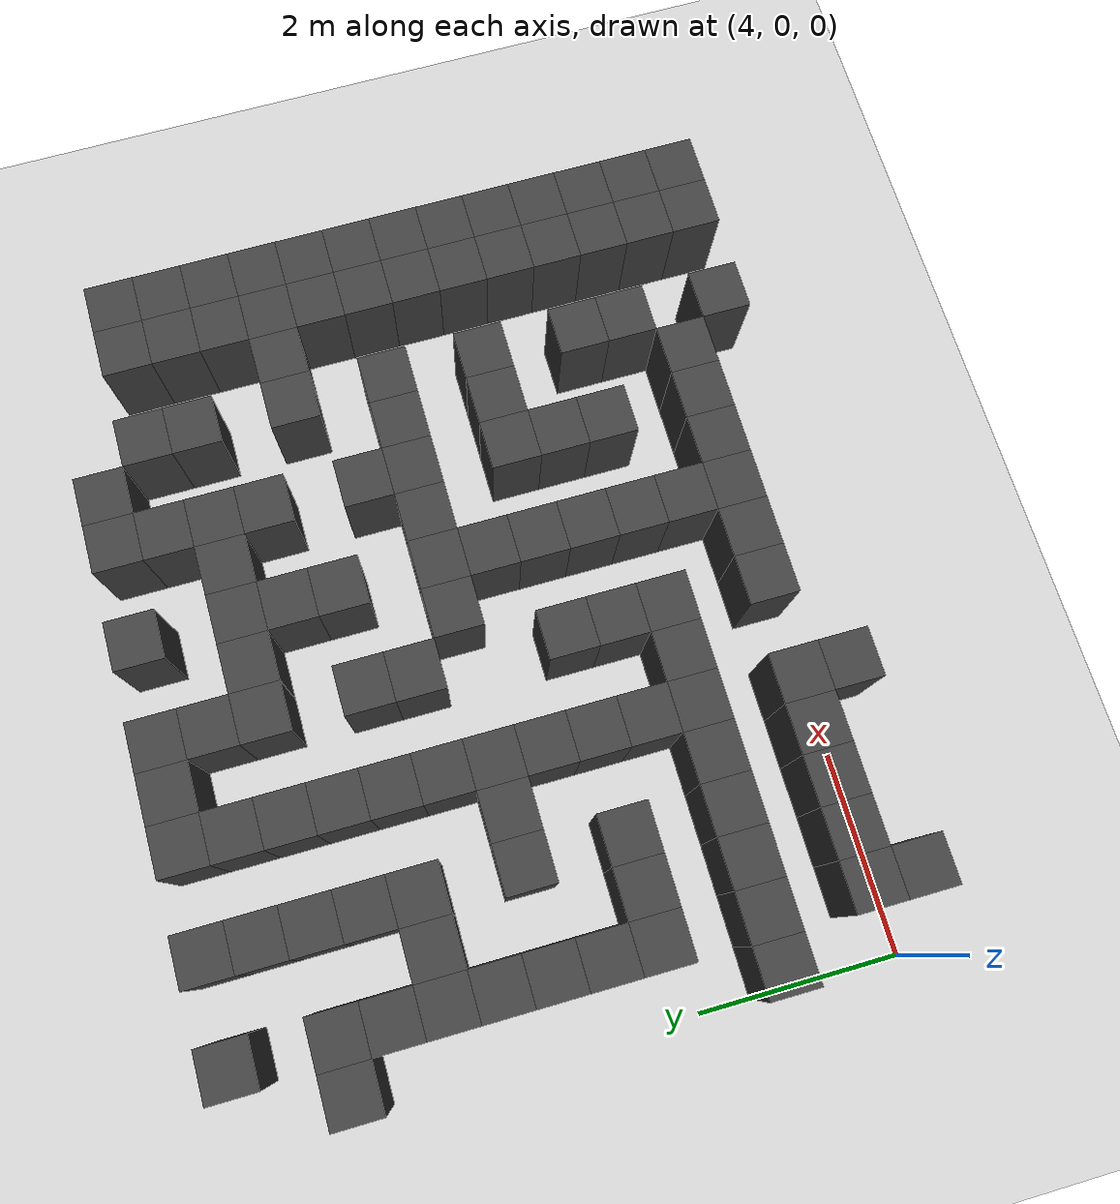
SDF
<sdf version="1.7">
 <world name="map_18596">
  <model name="ground_plane">
   <static>true</static>
   <link name="link">
    <collision name="collision">
     <geometry><plane><normal>0 0 1</normal><size>200 200</size></plane></geometry>
    </collision>
    <visual name="visual">
     <geometry><plane><normal>0 0 1</normal><size>200 200</size></plane></geometry>
     <material><ambient>0.8 0.8 0.8 1</ambient><diffuse>0.8 0.8 0.8 1</diffuse></material>
    </visual>
   </link>
  </model>
  <model name="maze_environment">
   <static>true</static>
   <link name="wall_334">
    <pose>4.750 6.250 0.500 0 0 0</pose>
    <collision name="col"><geometry><box><size>0.5 0.5 1.0</size></box></geometry></collision>
    <visual name="vis">
     <geometry><box><size>0.5 0.5 1.0</size></box></geometry>
     <material><ambient>0.15 0.15 0.15 1</ambient><diffuse>0.25 0.25 0.25 1</diffuse></material>
    </visual>
   </link>
   <link name="wall_335">
    <pose>5.750 6.250 0.500 0 0 0</pose>
    <collision name="col"><geometry><box><size>0.5 0.5 1.0</size></box></geometry></collision>
    <visual name="vis">
     <geometry><box><size>0.5 0.5 1.0</size></box></geometry>
     <material><ambient>0.15 0.15 0.15 1</ambient><diffuse>0.25 0.25 0.25 1</diffuse></material>
    </visual>
   </link>
   <link name="wall_336">
    <pose>6.750 6.250 0.500 0 0 0</pose>
    <collision name="col"><geometry><box><size>0.5 0.5 1.0</size></box></geometry></collision>
    <visual name="vis">
     <geometry><box><size>0.5 0.5 1.0</size></box></geometry>
     <material><ambient>0.15 0.15 0.15 1</ambient><diffuse>0.25 0.25 0.25 1</diffuse></material>
    </visual>
   </link>
   <link name="wall_337">
    <pose>7.250 6.250 0.500 0 0 0</pose>
    <collision name="col"><geometry><box><size>0.5 0.5 1.0</size></box></geometry></collision>
    <visual name="vis">
     <geometry><box><size>0.5 0.5 1.0</size></box></geometry>
     <material><ambient>0.15 0.15 0.15 1</ambient><diffuse>0.25 0.25 0.25 1</diffuse></material>
    </visual>
   </link>
   <link name="wall_338">
    <pose>7.750 6.250 0.500 0 0 0</pose>
    <collision name="col"><geometry><box><size>0.5 0.5 1.0</size></box></geometry></collision>
    <visual name="vis">
     <geometry><box><size>0.5 0.5 1.0</size></box></geometry>
     <material><ambient>0.15 0.15 0.15 1</ambient><diffuse>0.25 0.25 0.25 1</diffuse></material>
    </visual>
   </link>
   <link name="wall_339">
    <pose>8.750 6.250 0.500 0 0 0</pose>
    <collision name="col"><geometry><box><size>0.5 0.5 1.0</size></box></geometry></collision>
    <visual name="vis">
     <geometry><box><size>0.5 0.5 1.0</size></box></geometry>
     <material><ambient>0.15 0.15 0.15 1</ambient><diffuse>0.25 0.25 0.25 1</diffuse></material>
    </visual>
   </link>
   <link name="wall_340">
    <pose>9.750 6.250 0.500 0 0 0</pose>
    <collision name="col"><geometry><box><size>0.5 0.5 1.0</size></box></geometry></collision>
    <visual name="vis">
     <geometry><box><size>0.5 0.5 1.0</size></box></geometry>
     <material><ambient>0.15 0.15 0.15 1</ambient><diffuse>0.25 0.25 0.25 1</diffuse></material>
    </visual>
   </link>
   <link name="wall_341">
    <pose>10.250 6.250 0.500 0 0 0</pose>
    <collision name="col"><geometry><box><size>0.5 0.5 1.0</size></box></geometry></collision>
    <visual name="vis">
     <geometry><box><size>0.5 0.5 1.0</size></box></geometry>
     <material><ambient>0.15 0.15 0.15 1</ambient><diffuse>0.25 0.25 0.25 1</diffuse></material>
    </visual>
   </link>
   <link name="wall_348">
    <pose>5.750 5.750 0.500 0 0 0</pose>
    <collision name="col"><geometry><box><size>0.5 0.5 1.0</size></box></geometry></collision>
    <visual name="vis">
     <geometry><box><size>0.5 0.5 1.0</size></box></geometry>
     <material><ambient>0.15 0.15 0.15 1</ambient><diffuse>0.25 0.25 0.25 1</diffuse></material>
    </visual>
   </link>
   <link name="wall_349">
    <pose>6.750 5.750 0.500 0 0 0</pose>
    <collision name="col"><geometry><box><size>0.5 0.5 1.0</size></box></geometry></collision>
    <visual name="vis">
     <geometry><box><size>0.5 0.5 1.0</size></box></geometry>
     <material><ambient>0.15 0.15 0.15 1</ambient><diffuse>0.25 0.25 0.25 1</diffuse></material>
    </visual>
   </link>
   <link name="wall_350">
    <pose>7.750 5.750 0.500 0 0 0</pose>
    <collision name="col"><geometry><box><size>0.5 0.5 1.0</size></box></geometry></collision>
    <visual name="vis">
     <geometry><box><size>0.5 0.5 1.0</size></box></geometry>
     <material><ambient>0.15 0.15 0.15 1</ambient><diffuse>0.25 0.25 0.25 1</diffuse></material>
    </visual>
   </link>
   <link name="wall_351">
    <pose>9.750 5.750 0.500 0 0 0</pose>
    <collision name="col"><geometry><box><size>0.5 0.5 1.0</size></box></geometry></collision>
    <visual name="vis">
     <geometry><box><size>0.5 0.5 1.0</size></box></geometry>
     <material><ambient>0.15 0.15 0.15 1</ambient><diffuse>0.25 0.25 0.25 1</diffuse></material>
    </visual>
   </link>
   <link name="wall_352">
    <pose>10.750 5.750 0.500 0 0 0</pose>
    <collision name="col"><geometry><box><size>0.5 0.5 1.0</size></box></geometry></collision>
    <visual name="vis">
     <geometry><box><size>0.5 0.5 1.0</size></box></geometry>
     <material><ambient>0.15 0.15 0.15 1</ambient><diffuse>0.25 0.25 0.25 1</diffuse></material>
    </visual>
   </link>
   <link name="wall_353">
    <pose>11.750 5.750 0.500 0 0 0</pose>
    <collision name="col"><geometry><box><size>0.5 0.5 1.0</size></box></geometry></collision>
    <visual name="vis">
     <geometry><box><size>0.5 0.5 1.0</size></box></geometry>
     <material><ambient>0.15 0.15 0.15 1</ambient><diffuse>0.25 0.25 0.25 1</diffuse></material>
    </visual>
   </link>
   <link name="wall_354">
    <pose>12.250 5.750 0.500 0 0 0</pose>
    <collision name="col"><geometry><box><size>0.5 0.5 1.0</size></box></geometry></collision>
    <visual name="vis">
     <geometry><box><size>0.5 0.5 1.0</size></box></geometry>
     <material><ambient>0.15 0.15 0.15 1</ambient><diffuse>0.25 0.25 0.25 1</diffuse></material>
    </visual>
   </link>
   <link name="wall_383">
    <pose>4.250 5.250 0.500 0 0 0</pose>
    <collision name="col"><geometry><box><size>0.5 0.5 1.0</size></box></geometry></collision>
    <visual name="vis">
     <geometry><box><size>0.5 0.5 1.0</size></box></geometry>
     <material><ambient>0.15 0.15 0.15 1</ambient><diffuse>0.25 0.25 0.25 1</diffuse></material>
    </visual>
   </link>
   <link name="wall_384">
    <pose>4.750 5.250 0.500 0 0 0</pose>
    <collision name="col"><geometry><box><size>0.5 0.5 1.0</size></box></geometry></collision>
    <visual name="vis">
     <geometry><box><size>0.5 0.5 1.0</size></box></geometry>
     <material><ambient>0.15 0.15 0.15 1</ambient><diffuse>0.25 0.25 0.25 1</diffuse></material>
    </visual>
   </link>
   <link name="wall_385">
    <pose>5.750 5.250 0.500 0 0 0</pose>
    <collision name="col"><geometry><box><size>0.5 0.5 1.0</size></box></geometry></collision>
    <visual name="vis">
     <geometry><box><size>0.5 0.5 1.0</size></box></geometry>
     <material><ambient>0.15 0.15 0.15 1</ambient><diffuse>0.25 0.25 0.25 1</diffuse></material>
    </visual>
   </link>
   <link name="wall_386">
    <pose>6.750 5.250 0.500 0 0 0</pose>
    <collision name="col"><geometry><box><size>0.5 0.5 1.0</size></box></geometry></collision>
    <visual name="vis">
     <geometry><box><size>0.5 0.5 1.0</size></box></geometry>
     <material><ambient>0.15 0.15 0.15 1</ambient><diffuse>0.25 0.25 0.25 1</diffuse></material>
    </visual>
   </link>
   <link name="wall_387">
    <pose>7.750 5.250 0.500 0 0 0</pose>
    <collision name="col"><geometry><box><size>0.5 0.5 1.0</size></box></geometry></collision>
    <visual name="vis">
     <geometry><box><size>0.5 0.5 1.0</size></box></geometry>
     <material><ambient>0.15 0.15 0.15 1</ambient><diffuse>0.25 0.25 0.25 1</diffuse></material>
    </visual>
   </link>
   <link name="wall_388">
    <pose>8.250 5.250 0.500 0 0 0</pose>
    <collision name="col"><geometry><box><size>0.5 0.5 1.0</size></box></geometry></collision>
    <visual name="vis">
     <geometry><box><size>0.5 0.5 1.0</size></box></geometry>
     <material><ambient>0.15 0.15 0.15 1</ambient><diffuse>0.25 0.25 0.25 1</diffuse></material>
    </visual>
   </link>
   <link name="wall_389">
    <pose>8.750 5.250 0.500 0 0 0</pose>
    <collision name="col"><geometry><box><size>0.5 0.5 1.0</size></box></geometry></collision>
    <visual name="vis">
     <geometry><box><size>0.5 0.5 1.0</size></box></geometry>
     <material><ambient>0.15 0.15 0.15 1</ambient><diffuse>0.25 0.25 0.25 1</diffuse></material>
    </visual>
   </link>
   <link name="wall_390">
    <pose>9.250 5.250 0.500 0 0 0</pose>
    <collision name="col"><geometry><box><size>0.5 0.5 1.0</size></box></geometry></collision>
    <visual name="vis">
     <geometry><box><size>0.5 0.5 1.0</size></box></geometry>
     <material><ambient>0.15 0.15 0.15 1</ambient><diffuse>0.25 0.25 0.25 1</diffuse></material>
    </visual>
   </link>
   <link name="wall_391">
    <pose>9.750 5.250 0.500 0 0 0</pose>
    <collision name="col"><geometry><box><size>0.5 0.5 1.0</size></box></geometry></collision>
    <visual name="vis">
     <geometry><box><size>0.5 0.5 1.0</size></box></geometry>
     <material><ambient>0.15 0.15 0.15 1</ambient><diffuse>0.25 0.25 0.25 1</diffuse></material>
    </visual>
   </link>
   <link name="wall_392">
    <pose>10.750 5.250 0.500 0 0 0</pose>
    <collision name="col"><geometry><box><size>0.5 0.5 1.0</size></box></geometry></collision>
    <visual name="vis">
     <geometry><box><size>0.5 0.5 1.0</size></box></geometry>
     <material><ambient>0.15 0.15 0.15 1</ambient><diffuse>0.25 0.25 0.25 1</diffuse></material>
    </visual>
   </link>
   <link name="wall_393">
    <pose>11.750 5.250 0.500 0 0 0</pose>
    <collision name="col"><geometry><box><size>0.5 0.5 1.0</size></box></geometry></collision>
    <visual name="vis">
     <geometry><box><size>0.5 0.5 1.0</size></box></geometry>
     <material><ambient>0.15 0.15 0.15 1</ambient><diffuse>0.25 0.25 0.25 1</diffuse></material>
    </visual>
   </link>
   <link name="wall_394">
    <pose>12.250 5.250 0.500 0 0 0</pose>
    <collision name="col"><geometry><box><size>0.5 0.5 1.0</size></box></geometry></collision>
    <visual name="vis">
     <geometry><box><size>0.5 0.5 1.0</size></box></geometry>
     <material><ambient>0.15 0.15 0.15 1</ambient><diffuse>0.25 0.25 0.25 1</diffuse></material>
    </visual>
   </link>
   <link name="wall_402">
    <pose>4.750 4.750 0.500 0 0 0</pose>
    <collision name="col"><geometry><box><size>0.5 0.5 1.0</size></box></geometry></collision>
    <visual name="vis">
     <geometry><box><size>0.5 0.5 1.0</size></box></geometry>
     <material><ambient>0.15 0.15 0.15 1</ambient><diffuse>0.25 0.25 0.25 1</diffuse></material>
    </visual>
   </link>
   <link name="wall_403">
    <pose>5.750 4.750 0.500 0 0 0</pose>
    <collision name="col"><geometry><box><size>0.5 0.5 1.0</size></box></geometry></collision>
    <visual name="vis">
     <geometry><box><size>0.5 0.5 1.0</size></box></geometry>
     <material><ambient>0.15 0.15 0.15 1</ambient><diffuse>0.25 0.25 0.25 1</diffuse></material>
    </visual>
   </link>
   <link name="wall_404">
    <pose>6.750 4.750 0.500 0 0 0</pose>
    <collision name="col"><geometry><box><size>0.5 0.5 1.0</size></box></geometry></collision>
    <visual name="vis">
     <geometry><box><size>0.5 0.5 1.0</size></box></geometry>
     <material><ambient>0.15 0.15 0.15 1</ambient><diffuse>0.25 0.25 0.25 1</diffuse></material>
    </visual>
   </link>
   <link name="wall_405">
    <pose>8.750 4.750 0.500 0 0 0</pose>
    <collision name="col"><geometry><box><size>0.5 0.5 1.0</size></box></geometry></collision>
    <visual name="vis">
     <geometry><box><size>0.5 0.5 1.0</size></box></geometry>
     <material><ambient>0.15 0.15 0.15 1</ambient><diffuse>0.25 0.25 0.25 1</diffuse></material>
    </visual>
   </link>
   <link name="wall_406">
    <pose>9.750 4.750 0.500 0 0 0</pose>
    <collision name="col"><geometry><box><size>0.5 0.5 1.0</size></box></geometry></collision>
    <visual name="vis">
     <geometry><box><size>0.5 0.5 1.0</size></box></geometry>
     <material><ambient>0.15 0.15 0.15 1</ambient><diffuse>0.25 0.25 0.25 1</diffuse></material>
    </visual>
   </link>
   <link name="wall_407">
    <pose>11.750 4.750 0.500 0 0 0</pose>
    <collision name="col"><geometry><box><size>0.5 0.5 1.0</size></box></geometry></collision>
    <visual name="vis">
     <geometry><box><size>0.5 0.5 1.0</size></box></geometry>
     <material><ambient>0.15 0.15 0.15 1</ambient><diffuse>0.25 0.25 0.25 1</diffuse></material>
    </visual>
   </link>
   <link name="wall_408">
    <pose>12.250 4.750 0.500 0 0 0</pose>
    <collision name="col"><geometry><box><size>0.5 0.5 1.0</size></box></geometry></collision>
    <visual name="vis">
     <geometry><box><size>0.5 0.5 1.0</size></box></geometry>
     <material><ambient>0.15 0.15 0.15 1</ambient><diffuse>0.25 0.25 0.25 1</diffuse></material>
    </visual>
   </link>
   <link name="wall_434">
    <pose>4.750 4.250 0.500 0 0 0</pose>
    <collision name="col"><geometry><box><size>0.5 0.5 1.0</size></box></geometry></collision>
    <visual name="vis">
     <geometry><box><size>0.5 0.5 1.0</size></box></geometry>
     <material><ambient>0.15 0.15 0.15 1</ambient><diffuse>0.25 0.25 0.25 1</diffuse></material>
    </visual>
   </link>
   <link name="wall_435">
    <pose>5.250 4.250 0.500 0 0 0</pose>
    <collision name="col"><geometry><box><size>0.5 0.5 1.0</size></box></geometry></collision>
    <visual name="vis">
     <geometry><box><size>0.5 0.5 1.0</size></box></geometry>
     <material><ambient>0.15 0.15 0.15 1</ambient><diffuse>0.25 0.25 0.25 1</diffuse></material>
    </visual>
   </link>
   <link name="wall_436">
    <pose>5.750 4.250 0.500 0 0 0</pose>
    <collision name="col"><geometry><box><size>0.5 0.5 1.0</size></box></geometry></collision>
    <visual name="vis">
     <geometry><box><size>0.5 0.5 1.0</size></box></geometry>
     <material><ambient>0.15 0.15 0.15 1</ambient><diffuse>0.25 0.25 0.25 1</diffuse></material>
    </visual>
   </link>
   <link name="wall_437">
    <pose>6.750 4.250 0.500 0 0 0</pose>
    <collision name="col"><geometry><box><size>0.5 0.5 1.0</size></box></geometry></collision>
    <visual name="vis">
     <geometry><box><size>0.5 0.5 1.0</size></box></geometry>
     <material><ambient>0.15 0.15 0.15 1</ambient><diffuse>0.25 0.25 0.25 1</diffuse></material>
    </visual>
   </link>
   <link name="wall_438">
    <pose>7.750 4.250 0.500 0 0 0</pose>
    <collision name="col"><geometry><box><size>0.5 0.5 1.0</size></box></geometry></collision>
    <visual name="vis">
     <geometry><box><size>0.5 0.5 1.0</size></box></geometry>
     <material><ambient>0.15 0.15 0.15 1</ambient><diffuse>0.25 0.25 0.25 1</diffuse></material>
    </visual>
   </link>
   <link name="wall_439">
    <pose>8.750 4.250 0.500 0 0 0</pose>
    <collision name="col"><geometry><box><size>0.5 0.5 1.0</size></box></geometry></collision>
    <visual name="vis">
     <geometry><box><size>0.5 0.5 1.0</size></box></geometry>
     <material><ambient>0.15 0.15 0.15 1</ambient><diffuse>0.25 0.25 0.25 1</diffuse></material>
    </visual>
   </link>
   <link name="wall_440">
    <pose>10.750 4.250 0.500 0 0 0</pose>
    <collision name="col"><geometry><box><size>0.5 0.5 1.0</size></box></geometry></collision>
    <visual name="vis">
     <geometry><box><size>0.5 0.5 1.0</size></box></geometry>
     <material><ambient>0.15 0.15 0.15 1</ambient><diffuse>0.25 0.25 0.25 1</diffuse></material>
    </visual>
   </link>
   <link name="wall_441">
    <pose>11.250 4.250 0.500 0 0 0</pose>
    <collision name="col"><geometry><box><size>0.5 0.5 1.0</size></box></geometry></collision>
    <visual name="vis">
     <geometry><box><size>0.5 0.5 1.0</size></box></geometry>
     <material><ambient>0.15 0.15 0.15 1</ambient><diffuse>0.25 0.25 0.25 1</diffuse></material>
    </visual>
   </link>
   <link name="wall_442">
    <pose>11.750 4.250 0.500 0 0 0</pose>
    <collision name="col"><geometry><box><size>0.5 0.5 1.0</size></box></geometry></collision>
    <visual name="vis">
     <geometry><box><size>0.5 0.5 1.0</size></box></geometry>
     <material><ambient>0.15 0.15 0.15 1</ambient><diffuse>0.25 0.25 0.25 1</diffuse></material>
    </visual>
   </link>
   <link name="wall_443">
    <pose>12.250 4.250 0.500 0 0 0</pose>
    <collision name="col"><geometry><box><size>0.5 0.5 1.0</size></box></geometry></collision>
    <visual name="vis">
     <geometry><box><size>0.5 0.5 1.0</size></box></geometry>
     <material><ambient>0.15 0.15 0.15 1</ambient><diffuse>0.25 0.25 0.25 1</diffuse></material>
    </visual>
   </link>
   <link name="wall_452">
    <pose>4.750 3.750 0.500 0 0 0</pose>
    <collision name="col"><geometry><box><size>0.5 0.5 1.0</size></box></geometry></collision>
    <visual name="vis">
     <geometry><box><size>0.5 0.5 1.0</size></box></geometry>
     <material><ambient>0.15 0.15 0.15 1</ambient><diffuse>0.25 0.25 0.25 1</diffuse></material>
    </visual>
   </link>
   <link name="wall_453">
    <pose>6.750 3.750 0.500 0 0 0</pose>
    <collision name="col"><geometry><box><size>0.5 0.5 1.0</size></box></geometry></collision>
    <visual name="vis">
     <geometry><box><size>0.5 0.5 1.0</size></box></geometry>
     <material><ambient>0.15 0.15 0.15 1</ambient><diffuse>0.25 0.25 0.25 1</diffuse></material>
    </visual>
   </link>
   <link name="wall_454">
    <pose>7.750 3.750 0.500 0 0 0</pose>
    <collision name="col"><geometry><box><size>0.5 0.5 1.0</size></box></geometry></collision>
    <visual name="vis">
     <geometry><box><size>0.5 0.5 1.0</size></box></geometry>
     <material><ambient>0.15 0.15 0.15 1</ambient><diffuse>0.25 0.25 0.25 1</diffuse></material>
    </visual>
   </link>
   <link name="wall_455">
    <pose>9.750 3.750 0.500 0 0 0</pose>
    <collision name="col"><geometry><box><size>0.5 0.5 1.0</size></box></geometry></collision>
    <visual name="vis">
     <geometry><box><size>0.5 0.5 1.0</size></box></geometry>
     <material><ambient>0.15 0.15 0.15 1</ambient><diffuse>0.25 0.25 0.25 1</diffuse></material>
    </visual>
   </link>
   <link name="wall_456">
    <pose>11.750 3.750 0.500 0 0 0</pose>
    <collision name="col"><geometry><box><size>0.5 0.5 1.0</size></box></geometry></collision>
    <visual name="vis">
     <geometry><box><size>0.5 0.5 1.0</size></box></geometry>
     <material><ambient>0.15 0.15 0.15 1</ambient><diffuse>0.25 0.25 0.25 1</diffuse></material>
    </visual>
   </link>
   <link name="wall_457">
    <pose>12.250 3.750 0.500 0 0 0</pose>
    <collision name="col"><geometry><box><size>0.5 0.5 1.0</size></box></geometry></collision>
    <visual name="vis">
     <geometry><box><size>0.5 0.5 1.0</size></box></geometry>
     <material><ambient>0.15 0.15 0.15 1</ambient><diffuse>0.25 0.25 0.25 1</diffuse></material>
    </visual>
   </link>
   <link name="wall_483">
    <pose>4.750 3.250 0.500 0 0 0</pose>
    <collision name="col"><geometry><box><size>0.5 0.5 1.0</size></box></geometry></collision>
    <visual name="vis">
     <geometry><box><size>0.5 0.5 1.0</size></box></geometry>
     <material><ambient>0.15 0.15 0.15 1</ambient><diffuse>0.25 0.25 0.25 1</diffuse></material>
    </visual>
   </link>
   <link name="wall_484">
    <pose>5.750 3.250 0.500 0 0 0</pose>
    <collision name="col"><geometry><box><size>0.5 0.5 1.0</size></box></geometry></collision>
    <visual name="vis">
     <geometry><box><size>0.5 0.5 1.0</size></box></geometry>
     <material><ambient>0.15 0.15 0.15 1</ambient><diffuse>0.25 0.25 0.25 1</diffuse></material>
    </visual>
   </link>
   <link name="wall_485">
    <pose>6.250 3.250 0.500 0 0 0</pose>
    <collision name="col"><geometry><box><size>0.5 0.5 1.0</size></box></geometry></collision>
    <visual name="vis">
     <geometry><box><size>0.5 0.5 1.0</size></box></geometry>
     <material><ambient>0.15 0.15 0.15 1</ambient><diffuse>0.25 0.25 0.25 1</diffuse></material>
    </visual>
   </link>
   <link name="wall_486">
    <pose>6.750 3.250 0.500 0 0 0</pose>
    <collision name="col"><geometry><box><size>0.5 0.5 1.0</size></box></geometry></collision>
    <visual name="vis">
     <geometry><box><size>0.5 0.5 1.0</size></box></geometry>
     <material><ambient>0.15 0.15 0.15 1</ambient><diffuse>0.25 0.25 0.25 1</diffuse></material>
    </visual>
   </link>
   <link name="wall_487">
    <pose>8.250 3.250 0.500 0 0 0</pose>
    <collision name="col"><geometry><box><size>0.5 0.5 1.0</size></box></geometry></collision>
    <visual name="vis">
     <geometry><box><size>0.5 0.5 1.0</size></box></geometry>
     <material><ambient>0.15 0.15 0.15 1</ambient><diffuse>0.25 0.25 0.25 1</diffuse></material>
    </visual>
   </link>
   <link name="wall_488">
    <pose>8.750 3.250 0.500 0 0 0</pose>
    <collision name="col"><geometry><box><size>0.5 0.5 1.0</size></box></geometry></collision>
    <visual name="vis">
     <geometry><box><size>0.5 0.5 1.0</size></box></geometry>
     <material><ambient>0.15 0.15 0.15 1</ambient><diffuse>0.25 0.25 0.25 1</diffuse></material>
    </visual>
   </link>
   <link name="wall_489">
    <pose>9.250 3.250 0.500 0 0 0</pose>
    <collision name="col"><geometry><box><size>0.5 0.5 1.0</size></box></geometry></collision>
    <visual name="vis">
     <geometry><box><size>0.5 0.5 1.0</size></box></geometry>
     <material><ambient>0.15 0.15 0.15 1</ambient><diffuse>0.25 0.25 0.25 1</diffuse></material>
    </visual>
   </link>
   <link name="wall_490">
    <pose>9.750 3.250 0.500 0 0 0</pose>
    <collision name="col"><geometry><box><size>0.5 0.5 1.0</size></box></geometry></collision>
    <visual name="vis">
     <geometry><box><size>0.5 0.5 1.0</size></box></geometry>
     <material><ambient>0.15 0.15 0.15 1</ambient><diffuse>0.25 0.25 0.25 1</diffuse></material>
    </visual>
   </link>
   <link name="wall_491">
    <pose>10.250 3.250 0.500 0 0 0</pose>
    <collision name="col"><geometry><box><size>0.5 0.5 1.0</size></box></geometry></collision>
    <visual name="vis">
     <geometry><box><size>0.5 0.5 1.0</size></box></geometry>
     <material><ambient>0.15 0.15 0.15 1</ambient><diffuse>0.25 0.25 0.25 1</diffuse></material>
    </visual>
   </link>
   <link name="wall_492">
    <pose>10.750 3.250 0.500 0 0 0</pose>
    <collision name="col"><geometry><box><size>0.5 0.5 1.0</size></box></geometry></collision>
    <visual name="vis">
     <geometry><box><size>0.5 0.5 1.0</size></box></geometry>
     <material><ambient>0.15 0.15 0.15 1</ambient><diffuse>0.25 0.25 0.25 1</diffuse></material>
    </visual>
   </link>
   <link name="wall_493">
    <pose>11.750 3.250 0.500 0 0 0</pose>
    <collision name="col"><geometry><box><size>0.5 0.5 1.0</size></box></geometry></collision>
    <visual name="vis">
     <geometry><box><size>0.5 0.5 1.0</size></box></geometry>
     <material><ambient>0.15 0.15 0.15 1</ambient><diffuse>0.25 0.25 0.25 1</diffuse></material>
    </visual>
   </link>
   <link name="wall_494">
    <pose>12.250 3.250 0.500 0 0 0</pose>
    <collision name="col"><geometry><box><size>0.5 0.5 1.0</size></box></geometry></collision>
    <visual name="vis">
     <geometry><box><size>0.5 0.5 1.0</size></box></geometry>
     <material><ambient>0.15 0.15 0.15 1</ambient><diffuse>0.25 0.25 0.25 1</diffuse></material>
    </visual>
   </link>
   <link name="wall_502">
    <pose>4.750 2.750 0.500 0 0 0</pose>
    <collision name="col"><geometry><box><size>0.5 0.5 1.0</size></box></geometry></collision>
    <visual name="vis">
     <geometry><box><size>0.5 0.5 1.0</size></box></geometry>
     <material><ambient>0.15 0.15 0.15 1</ambient><diffuse>0.25 0.25 0.25 1</diffuse></material>
    </visual>
   </link>
   <link name="wall_503">
    <pose>6.750 2.750 0.500 0 0 0</pose>
    <collision name="col"><geometry><box><size>0.5 0.5 1.0</size></box></geometry></collision>
    <visual name="vis">
     <geometry><box><size>0.5 0.5 1.0</size></box></geometry>
     <material><ambient>0.15 0.15 0.15 1</ambient><diffuse>0.25 0.25 0.25 1</diffuse></material>
    </visual>
   </link>
   <link name="wall_504">
    <pose>8.750 2.750 0.500 0 0 0</pose>
    <collision name="col"><geometry><box><size>0.5 0.5 1.0</size></box></geometry></collision>
    <visual name="vis">
     <geometry><box><size>0.5 0.5 1.0</size></box></geometry>
     <material><ambient>0.15 0.15 0.15 1</ambient><diffuse>0.25 0.25 0.25 1</diffuse></material>
    </visual>
   </link>
   <link name="wall_505">
    <pose>11.750 2.750 0.500 0 0 0</pose>
    <collision name="col"><geometry><box><size>0.5 0.5 1.0</size></box></geometry></collision>
    <visual name="vis">
     <geometry><box><size>0.5 0.5 1.0</size></box></geometry>
     <material><ambient>0.15 0.15 0.15 1</ambient><diffuse>0.25 0.25 0.25 1</diffuse></material>
    </visual>
   </link>
   <link name="wall_506">
    <pose>12.250 2.750 0.500 0 0 0</pose>
    <collision name="col"><geometry><box><size>0.5 0.5 1.0</size></box></geometry></collision>
    <visual name="vis">
     <geometry><box><size>0.5 0.5 1.0</size></box></geometry>
     <material><ambient>0.15 0.15 0.15 1</ambient><diffuse>0.25 0.25 0.25 1</diffuse></material>
    </visual>
   </link>
   <link name="wall_534">
    <pose>4.750 2.250 0.500 0 0 0</pose>
    <collision name="col"><geometry><box><size>0.5 0.5 1.0</size></box></geometry></collision>
    <visual name="vis">
     <geometry><box><size>0.5 0.5 1.0</size></box></geometry>
     <material><ambient>0.15 0.15 0.15 1</ambient><diffuse>0.25 0.25 0.25 1</diffuse></material>
    </visual>
   </link>
   <link name="wall_535">
    <pose>5.250 2.250 0.500 0 0 0</pose>
    <collision name="col"><geometry><box><size>0.5 0.5 1.0</size></box></geometry></collision>
    <visual name="vis">
     <geometry><box><size>0.5 0.5 1.0</size></box></geometry>
     <material><ambient>0.15 0.15 0.15 1</ambient><diffuse>0.25 0.25 0.25 1</diffuse></material>
    </visual>
   </link>
   <link name="wall_536">
    <pose>5.750 2.250 0.500 0 0 0</pose>
    <collision name="col"><geometry><box><size>0.5 0.5 1.0</size></box></geometry></collision>
    <visual name="vis">
     <geometry><box><size>0.5 0.5 1.0</size></box></geometry>
     <material><ambient>0.15 0.15 0.15 1</ambient><diffuse>0.25 0.25 0.25 1</diffuse></material>
    </visual>
   </link>
   <link name="wall_537">
    <pose>6.750 2.250 0.500 0 0 0</pose>
    <collision name="col"><geometry><box><size>0.5 0.5 1.0</size></box></geometry></collision>
    <visual name="vis">
     <geometry><box><size>0.5 0.5 1.0</size></box></geometry>
     <material><ambient>0.15 0.15 0.15 1</ambient><diffuse>0.25 0.25 0.25 1</diffuse></material>
    </visual>
   </link>
   <link name="wall_538">
    <pose>7.750 2.250 0.500 0 0 0</pose>
    <collision name="col"><geometry><box><size>0.5 0.5 1.0</size></box></geometry></collision>
    <visual name="vis">
     <geometry><box><size>0.5 0.5 1.0</size></box></geometry>
     <material><ambient>0.15 0.15 0.15 1</ambient><diffuse>0.25 0.25 0.25 1</diffuse></material>
    </visual>
   </link>
   <link name="wall_539">
    <pose>8.750 2.250 0.500 0 0 0</pose>
    <collision name="col"><geometry><box><size>0.5 0.5 1.0</size></box></geometry></collision>
    <visual name="vis">
     <geometry><box><size>0.5 0.5 1.0</size></box></geometry>
     <material><ambient>0.15 0.15 0.15 1</ambient><diffuse>0.25 0.25 0.25 1</diffuse></material>
    </visual>
   </link>
   <link name="wall_540">
    <pose>9.750 2.250 0.500 0 0 0</pose>
    <collision name="col"><geometry><box><size>0.5 0.5 1.0</size></box></geometry></collision>
    <visual name="vis">
     <geometry><box><size>0.5 0.5 1.0</size></box></geometry>
     <material><ambient>0.15 0.15 0.15 1</ambient><diffuse>0.25 0.25 0.25 1</diffuse></material>
    </visual>
   </link>
   <link name="wall_541">
    <pose>10.250 2.250 0.500 0 0 0</pose>
    <collision name="col"><geometry><box><size>0.5 0.5 1.0</size></box></geometry></collision>
    <visual name="vis">
     <geometry><box><size>0.5 0.5 1.0</size></box></geometry>
     <material><ambient>0.15 0.15 0.15 1</ambient><diffuse>0.25 0.25 0.25 1</diffuse></material>
    </visual>
   </link>
   <link name="wall_542">
    <pose>10.750 2.250 0.500 0 0 0</pose>
    <collision name="col"><geometry><box><size>0.5 0.5 1.0</size></box></geometry></collision>
    <visual name="vis">
     <geometry><box><size>0.5 0.5 1.0</size></box></geometry>
     <material><ambient>0.15 0.15 0.15 1</ambient><diffuse>0.25 0.25 0.25 1</diffuse></material>
    </visual>
   </link>
   <link name="wall_543">
    <pose>11.750 2.250 0.500 0 0 0</pose>
    <collision name="col"><geometry><box><size>0.5 0.5 1.0</size></box></geometry></collision>
    <visual name="vis">
     <geometry><box><size>0.5 0.5 1.0</size></box></geometry>
     <material><ambient>0.15 0.15 0.15 1</ambient><diffuse>0.25 0.25 0.25 1</diffuse></material>
    </visual>
   </link>
   <link name="wall_544">
    <pose>12.250 2.250 0.500 0 0 0</pose>
    <collision name="col"><geometry><box><size>0.5 0.5 1.0</size></box></geometry></collision>
    <visual name="vis">
     <geometry><box><size>0.5 0.5 1.0</size></box></geometry>
     <material><ambient>0.15 0.15 0.15 1</ambient><diffuse>0.25 0.25 0.25 1</diffuse></material>
    </visual>
   </link>
   <link name="wall_552">
    <pose>6.750 1.750 0.500 0 0 0</pose>
    <collision name="col"><geometry><box><size>0.5 0.5 1.0</size></box></geometry></collision>
    <visual name="vis">
     <geometry><box><size>0.5 0.5 1.0</size></box></geometry>
     <material><ambient>0.15 0.15 0.15 1</ambient><diffuse>0.25 0.25 0.25 1</diffuse></material>
    </visual>
   </link>
   <link name="wall_553">
    <pose>7.750 1.750 0.500 0 0 0</pose>
    <collision name="col"><geometry><box><size>0.5 0.5 1.0</size></box></geometry></collision>
    <visual name="vis">
     <geometry><box><size>0.5 0.5 1.0</size></box></geometry>
     <material><ambient>0.15 0.15 0.15 1</ambient><diffuse>0.25 0.25 0.25 1</diffuse></material>
    </visual>
   </link>
   <link name="wall_554">
    <pose>8.750 1.750 0.500 0 0 0</pose>
    <collision name="col"><geometry><box><size>0.5 0.5 1.0</size></box></geometry></collision>
    <visual name="vis">
     <geometry><box><size>0.5 0.5 1.0</size></box></geometry>
     <material><ambient>0.15 0.15 0.15 1</ambient><diffuse>0.25 0.25 0.25 1</diffuse></material>
    </visual>
   </link>
   <link name="wall_555">
    <pose>9.750 1.750 0.500 0 0 0</pose>
    <collision name="col"><geometry><box><size>0.5 0.5 1.0</size></box></geometry></collision>
    <visual name="vis">
     <geometry><box><size>0.5 0.5 1.0</size></box></geometry>
     <material><ambient>0.15 0.15 0.15 1</ambient><diffuse>0.25 0.25 0.25 1</diffuse></material>
    </visual>
   </link>
   <link name="wall_556">
    <pose>11.750 1.750 0.500 0 0 0</pose>
    <collision name="col"><geometry><box><size>0.5 0.5 1.0</size></box></geometry></collision>
    <visual name="vis">
     <geometry><box><size>0.5 0.5 1.0</size></box></geometry>
     <material><ambient>0.15 0.15 0.15 1</ambient><diffuse>0.25 0.25 0.25 1</diffuse></material>
    </visual>
   </link>
   <link name="wall_557">
    <pose>12.250 1.750 0.500 0 0 0</pose>
    <collision name="col"><geometry><box><size>0.5 0.5 1.0</size></box></geometry></collision>
    <visual name="vis">
     <geometry><box><size>0.5 0.5 1.0</size></box></geometry>
     <material><ambient>0.15 0.15 0.15 1</ambient><diffuse>0.25 0.25 0.25 1</diffuse></material>
    </visual>
   </link>
   <link name="wall_585">
    <pose>4.250 1.250 0.500 0 0 0</pose>
    <collision name="col"><geometry><box><size>0.5 0.5 1.0</size></box></geometry></collision>
    <visual name="vis">
     <geometry><box><size>0.5 0.5 1.0</size></box></geometry>
     <material><ambient>0.15 0.15 0.15 1</ambient><diffuse>0.25 0.25 0.25 1</diffuse></material>
    </visual>
   </link>
   <link name="wall_586">
    <pose>4.750 1.250 0.500 0 0 0</pose>
    <collision name="col"><geometry><box><size>0.5 0.5 1.0</size></box></geometry></collision>
    <visual name="vis">
     <geometry><box><size>0.5 0.5 1.0</size></box></geometry>
     <material><ambient>0.15 0.15 0.15 1</ambient><diffuse>0.25 0.25 0.25 1</diffuse></material>
    </visual>
   </link>
   <link name="wall_587">
    <pose>5.250 1.250 0.500 0 0 0</pose>
    <collision name="col"><geometry><box><size>0.5 0.5 1.0</size></box></geometry></collision>
    <visual name="vis">
     <geometry><box><size>0.5 0.5 1.0</size></box></geometry>
     <material><ambient>0.15 0.15 0.15 1</ambient><diffuse>0.25 0.25 0.25 1</diffuse></material>
    </visual>
   </link>
   <link name="wall_588">
    <pose>5.750 1.250 0.500 0 0 0</pose>
    <collision name="col"><geometry><box><size>0.5 0.5 1.0</size></box></geometry></collision>
    <visual name="vis">
     <geometry><box><size>0.5 0.5 1.0</size></box></geometry>
     <material><ambient>0.15 0.15 0.15 1</ambient><diffuse>0.25 0.25 0.25 1</diffuse></material>
    </visual>
   </link>
   <link name="wall_589">
    <pose>6.250 1.250 0.500 0 0 0</pose>
    <collision name="col"><geometry><box><size>0.5 0.5 1.0</size></box></geometry></collision>
    <visual name="vis">
     <geometry><box><size>0.5 0.5 1.0</size></box></geometry>
     <material><ambient>0.15 0.15 0.15 1</ambient><diffuse>0.25 0.25 0.25 1</diffuse></material>
    </visual>
   </link>
   <link name="wall_590">
    <pose>6.750 1.250 0.500 0 0 0</pose>
    <collision name="col"><geometry><box><size>0.5 0.5 1.0</size></box></geometry></collision>
    <visual name="vis">
     <geometry><box><size>0.5 0.5 1.0</size></box></geometry>
     <material><ambient>0.15 0.15 0.15 1</ambient><diffuse>0.25 0.25 0.25 1</diffuse></material>
    </visual>
   </link>
   <link name="wall_591">
    <pose>7.250 1.250 0.500 0 0 0</pose>
    <collision name="col"><geometry><box><size>0.5 0.5 1.0</size></box></geometry></collision>
    <visual name="vis">
     <geometry><box><size>0.5 0.5 1.0</size></box></geometry>
     <material><ambient>0.15 0.15 0.15 1</ambient><diffuse>0.25 0.25 0.25 1</diffuse></material>
    </visual>
   </link>
   <link name="wall_592">
    <pose>7.750 1.250 0.500 0 0 0</pose>
    <collision name="col"><geometry><box><size>0.5 0.5 1.0</size></box></geometry></collision>
    <visual name="vis">
     <geometry><box><size>0.5 0.5 1.0</size></box></geometry>
     <material><ambient>0.15 0.15 0.15 1</ambient><diffuse>0.25 0.25 0.25 1</diffuse></material>
    </visual>
   </link>
   <link name="wall_593">
    <pose>8.750 1.250 0.500 0 0 0</pose>
    <collision name="col"><geometry><box><size>0.5 0.5 1.0</size></box></geometry></collision>
    <visual name="vis">
     <geometry><box><size>0.5 0.5 1.0</size></box></geometry>
     <material><ambient>0.15 0.15 0.15 1</ambient><diffuse>0.25 0.25 0.25 1</diffuse></material>
    </visual>
   </link>
   <link name="wall_594">
    <pose>9.750 1.250 0.500 0 0 0</pose>
    <collision name="col"><geometry><box><size>0.5 0.5 1.0</size></box></geometry></collision>
    <visual name="vis">
     <geometry><box><size>0.5 0.5 1.0</size></box></geometry>
     <material><ambient>0.15 0.15 0.15 1</ambient><diffuse>0.25 0.25 0.25 1</diffuse></material>
    </visual>
   </link>
   <link name="wall_595">
    <pose>10.750 1.250 0.500 0 0 0</pose>
    <collision name="col"><geometry><box><size>0.5 0.5 1.0</size></box></geometry></collision>
    <visual name="vis">
     <geometry><box><size>0.5 0.5 1.0</size></box></geometry>
     <material><ambient>0.15 0.15 0.15 1</ambient><diffuse>0.25 0.25 0.25 1</diffuse></material>
    </visual>
   </link>
   <link name="wall_596">
    <pose>11.750 1.250 0.500 0 0 0</pose>
    <collision name="col"><geometry><box><size>0.5 0.5 1.0</size></box></geometry></collision>
    <visual name="vis">
     <geometry><box><size>0.5 0.5 1.0</size></box></geometry>
     <material><ambient>0.15 0.15 0.15 1</ambient><diffuse>0.25 0.25 0.25 1</diffuse></material>
    </visual>
   </link>
   <link name="wall_597">
    <pose>12.250 1.250 0.500 0 0 0</pose>
    <collision name="col"><geometry><box><size>0.5 0.5 1.0</size></box></geometry></collision>
    <visual name="vis">
     <geometry><box><size>0.5 0.5 1.0</size></box></geometry>
     <material><ambient>0.15 0.15 0.15 1</ambient><diffuse>0.25 0.25 0.25 1</diffuse></material>
    </visual>
   </link>
   <link name="wall_606">
    <pose>8.750 0.750 0.500 0 0 0</pose>
    <collision name="col"><geometry><box><size>0.5 0.5 1.0</size></box></geometry></collision>
    <visual name="vis">
     <geometry><box><size>0.5 0.5 1.0</size></box></geometry>
     <material><ambient>0.15 0.15 0.15 1</ambient><diffuse>0.25 0.25 0.25 1</diffuse></material>
    </visual>
   </link>
   <link name="wall_607">
    <pose>10.750 0.750 0.500 0 0 0</pose>
    <collision name="col"><geometry><box><size>0.5 0.5 1.0</size></box></geometry></collision>
    <visual name="vis">
     <geometry><box><size>0.5 0.5 1.0</size></box></geometry>
     <material><ambient>0.15 0.15 0.15 1</ambient><diffuse>0.25 0.25 0.25 1</diffuse></material>
    </visual>
   </link>
   <link name="wall_608">
    <pose>11.750 0.750 0.500 0 0 0</pose>
    <collision name="col"><geometry><box><size>0.5 0.5 1.0</size></box></geometry></collision>
    <visual name="vis">
     <geometry><box><size>0.5 0.5 1.0</size></box></geometry>
     <material><ambient>0.15 0.15 0.15 1</ambient><diffuse>0.25 0.25 0.25 1</diffuse></material>
    </visual>
   </link>
   <link name="wall_609">
    <pose>12.250 0.750 0.500 0 0 0</pose>
    <collision name="col"><geometry><box><size>0.5 0.5 1.0</size></box></geometry></collision>
    <visual name="vis">
     <geometry><box><size>0.5 0.5 1.0</size></box></geometry>
     <material><ambient>0.15 0.15 0.15 1</ambient><diffuse>0.25 0.25 0.25 1</diffuse></material>
    </visual>
   </link>
   <link name="wall_636">
    <pose>4.750 0.250 0.500 0 0 0</pose>
    <collision name="col"><geometry><box><size>0.5 0.5 1.0</size></box></geometry></collision>
    <visual name="vis">
     <geometry><box><size>0.5 0.5 1.0</size></box></geometry>
     <material><ambient>0.15 0.15 0.15 1</ambient><diffuse>0.25 0.25 0.25 1</diffuse></material>
    </visual>
   </link>
   <link name="wall_637">
    <pose>5.250 0.250 0.500 0 0 0</pose>
    <collision name="col"><geometry><box><size>0.5 0.5 1.0</size></box></geometry></collision>
    <visual name="vis">
     <geometry><box><size>0.5 0.5 1.0</size></box></geometry>
     <material><ambient>0.15 0.15 0.15 1</ambient><diffuse>0.25 0.25 0.25 1</diffuse></material>
    </visual>
   </link>
   <link name="wall_638">
    <pose>5.750 0.250 0.500 0 0 0</pose>
    <collision name="col"><geometry><box><size>0.5 0.5 1.0</size></box></geometry></collision>
    <visual name="vis">
     <geometry><box><size>0.5 0.5 1.0</size></box></geometry>
     <material><ambient>0.15 0.15 0.15 1</ambient><diffuse>0.25 0.25 0.25 1</diffuse></material>
    </visual>
   </link>
   <link name="wall_639">
    <pose>6.250 0.250 0.500 0 0 0</pose>
    <collision name="col"><geometry><box><size>0.5 0.5 1.0</size></box></geometry></collision>
    <visual name="vis">
     <geometry><box><size>0.5 0.5 1.0</size></box></geometry>
     <material><ambient>0.15 0.15 0.15 1</ambient><diffuse>0.25 0.25 0.25 1</diffuse></material>
    </visual>
   </link>
   <link name="wall_640">
    <pose>6.750 0.250 0.500 0 0 0</pose>
    <collision name="col"><geometry><box><size>0.5 0.5 1.0</size></box></geometry></collision>
    <visual name="vis">
     <geometry><box><size>0.5 0.5 1.0</size></box></geometry>
     <material><ambient>0.15 0.15 0.15 1</ambient><diffuse>0.25 0.25 0.25 1</diffuse></material>
    </visual>
   </link>
   <link name="wall_641">
    <pose>7.750 0.250 0.500 0 0 0</pose>
    <collision name="col"><geometry><box><size>0.5 0.5 1.0</size></box></geometry></collision>
    <visual name="vis">
     <geometry><box><size>0.5 0.5 1.0</size></box></geometry>
     <material><ambient>0.15 0.15 0.15 1</ambient><diffuse>0.25 0.25 0.25 1</diffuse></material>
    </visual>
   </link>
   <link name="wall_642">
    <pose>8.250 0.250 0.500 0 0 0</pose>
    <collision name="col"><geometry><box><size>0.5 0.5 1.0</size></box></geometry></collision>
    <visual name="vis">
     <geometry><box><size>0.5 0.5 1.0</size></box></geometry>
     <material><ambient>0.15 0.15 0.15 1</ambient><diffuse>0.25 0.25 0.25 1</diffuse></material>
    </visual>
   </link>
   <link name="wall_643">
    <pose>8.750 0.250 0.500 0 0 0</pose>
    <collision name="col"><geometry><box><size>0.5 0.5 1.0</size></box></geometry></collision>
    <visual name="vis">
     <geometry><box><size>0.5 0.5 1.0</size></box></geometry>
     <material><ambient>0.15 0.15 0.15 1</ambient><diffuse>0.25 0.25 0.25 1</diffuse></material>
    </visual>
   </link>
   <link name="wall_644">
    <pose>9.250 0.250 0.500 0 0 0</pose>
    <collision name="col"><geometry><box><size>0.5 0.5 1.0</size></box></geometry></collision>
    <visual name="vis">
     <geometry><box><size>0.5 0.5 1.0</size></box></geometry>
     <material><ambient>0.15 0.15 0.15 1</ambient><diffuse>0.25 0.25 0.25 1</diffuse></material>
    </visual>
   </link>
   <link name="wall_645">
    <pose>9.750 0.250 0.500 0 0 0</pose>
    <collision name="col"><geometry><box><size>0.5 0.5 1.0</size></box></geometry></collision>
    <visual name="vis">
     <geometry><box><size>0.5 0.5 1.0</size></box></geometry>
     <material><ambient>0.15 0.15 0.15 1</ambient><diffuse>0.25 0.25 0.25 1</diffuse></material>
    </visual>
   </link>
   <link name="wall_646">
    <pose>10.250 0.250 0.500 0 0 0</pose>
    <collision name="col"><geometry><box><size>0.5 0.5 1.0</size></box></geometry></collision>
    <visual name="vis">
     <geometry><box><size>0.5 0.5 1.0</size></box></geometry>
     <material><ambient>0.15 0.15 0.15 1</ambient><diffuse>0.25 0.25 0.25 1</diffuse></material>
    </visual>
   </link>
   <link name="wall_647">
    <pose>11.750 0.250 0.500 0 0 0</pose>
    <collision name="col"><geometry><box><size>0.5 0.5 1.0</size></box></geometry></collision>
    <visual name="vis">
     <geometry><box><size>0.5 0.5 1.0</size></box></geometry>
     <material><ambient>0.15 0.15 0.15 1</ambient><diffuse>0.25 0.25 0.25 1</diffuse></material>
    </visual>
   </link>
   <link name="wall_648">
    <pose>12.250 0.250 0.500 0 0 0</pose>
    <collision name="col"><geometry><box><size>0.5 0.5 1.0</size></box></geometry></collision>
    <visual name="vis">
     <geometry><box><size>0.5 0.5 1.0</size></box></geometry>
     <material><ambient>0.15 0.15 0.15 1</ambient><diffuse>0.25 0.25 0.25 1</diffuse></material>
    </visual>
   </link>
   <link name="wall_658">
    <pose>4.750 -0.250 0.500 0 0 0</pose>
    <collision name="col"><geometry><box><size>0.5 0.5 1.0</size></box></geometry></collision>
    <visual name="vis">
     <geometry><box><size>0.5 0.5 1.0</size></box></geometry>
     <material><ambient>0.15 0.15 0.15 1</ambient><diffuse>0.25 0.25 0.25 1</diffuse></material>
    </visual>
   </link>
   <link name="wall_659">
    <pose>6.750 -0.250 0.500 0 0 0</pose>
    <collision name="col"><geometry><box><size>0.5 0.5 1.0</size></box></geometry></collision>
    <visual name="vis">
     <geometry><box><size>0.5 0.5 1.0</size></box></geometry>
     <material><ambient>0.15 0.15 0.15 1</ambient><diffuse>0.25 0.25 0.25 1</diffuse></material>
    </visual>
   </link>
   <link name="wall_660">
    <pose>10.750 -0.250 0.500 0 0 0</pose>
    <collision name="col"><geometry><box><size>0.5 0.5 1.0</size></box></geometry></collision>
    <visual name="vis">
     <geometry><box><size>0.5 0.5 1.0</size></box></geometry>
     <material><ambient>0.15 0.15 0.15 1</ambient><diffuse>0.25 0.25 0.25 1</diffuse></material>
    </visual>
   </link>
   <link name="wall_661">
    <pose>11.750 -0.250 0.500 0 0 0</pose>
    <collision name="col"><geometry><box><size>0.5 0.5 1.0</size></box></geometry></collision>
    <visual name="vis">
     <geometry><box><size>0.5 0.5 1.0</size></box></geometry>
     <material><ambient>0.15 0.15 0.15 1</ambient><diffuse>0.25 0.25 0.25 1</diffuse></material>
    </visual>
   </link>
   <link name="wall_662">
    <pose>12.250 -0.250 0.500 0 0 0</pose>
    <collision name="col"><geometry><box><size>0.5 0.5 1.0</size></box></geometry></collision>
    <visual name="vis">
     <geometry><box><size>0.5 0.5 1.0</size></box></geometry>
     <material><ambient>0.15 0.15 0.15 1</ambient><diffuse>0.25 0.25 0.25 1</diffuse></material>
    </visual>
   </link>
  </model>
 </world>
</sdf>
